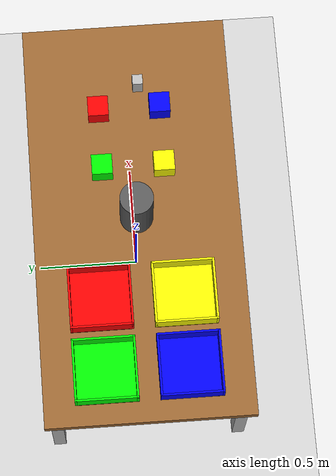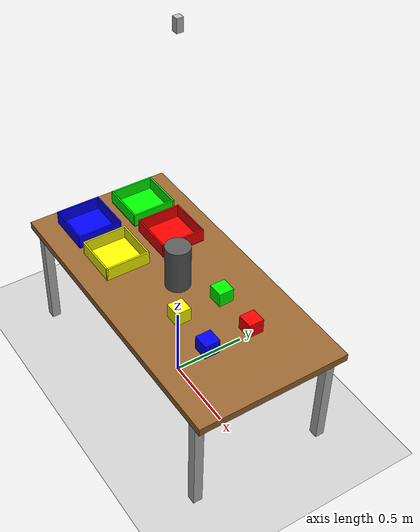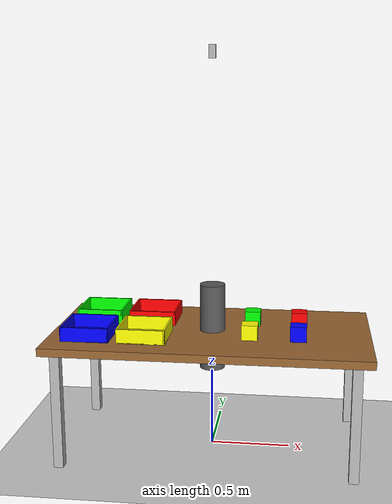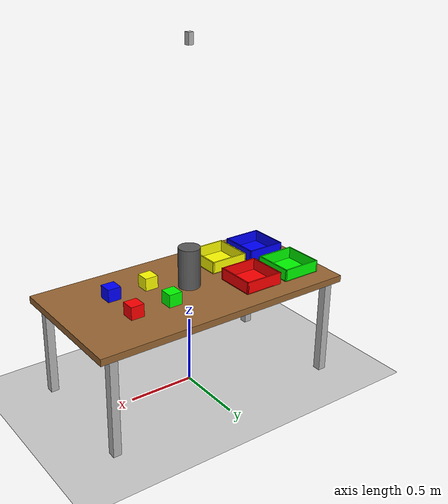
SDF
<?xml version="1.0" ?>
<sdf version="1.9">
  <world name="pick_place_world">
    <!-- Physics -->
    <physics name="1ms" type="ignored">
      <max_step_size>0.001</max_step_size>
      <real_time_factor>1.0</real_time_factor>
    </physics>

    <!-- Plugins -->
    <plugin
      filename="gz-sim-physics-system"
      name="gz::sim::systems::Physics"/>

    <plugin
      filename="gz-sim-user-commands-system"
      name="gz::sim::systems::UserCommands"/>

    <plugin
      filename="gz-sim-scene-broadcaster-system"
      name="gz::sim::systems::SceneBroadcaster"/>

    <plugin
      filename="gz-sim-sensors-system"
      name="gz::sim::systems::Sensors">
      <render_engine>ogre2</render_engine>
    </plugin>

    <!-- Light -->
    <light type="directional" name="sun">
      <cast_shadows>true</cast_shadows>
      <pose>0 0 10 0 0 0</pose>
      <diffuse>1 1 1 1</diffuse>
      <specular>0.2 0.2 0.2 1</specular>
      <direction>-0.5 0.2 -1</direction>
    </light>

    <!-- Ground -->
    <model name="ground_plane">
      <static>true</static>
      <link name="link">
        <collision name="collision">
          <geometry>
            <plane>
              <normal>0 0 1</normal>
              <size>10 10</size>
            </plane>
          </geometry>
        </collision>

        <visual name="visual">
          <geometry>
            <plane>
              <normal>0 0 1</normal>
              <size>10 10</size>
            </plane>
          </geometry>
        </visual>
      </link>
    </model>

    <!-- TABLE -->
    <model name="simple_table">
      <static>true</static>
      <!-- Tischplatte -->
      <link name="table_top">
        <pose>0 0 0.75 0 0 0</pose>

        <collision name="collision">
          <geometry>
            <box>
              <size>2.0 1.0 0.05</size>
            </box>
          </geometry>
        </collision>

        <visual name="visual">
          <geometry>
            <box>
              <size>2.0 1.0 0.05</size>
            </box>
          </geometry>

          <material>
            <ambient>0.6 0.4 0.2 1</ambient>
            <diffuse>0.6 0.4 0.2 1</diffuse>
          </material>
        </visual>
      </link>

      <!-- Tischbein 1 -->
      <link name="leg1">
        <pose>0.9 0.45 0.375 0 0 0</pose>

        <collision name="collision">
          <geometry>
            <box>
              <size>0.06 0.06 0.75</size>
            </box>
          </geometry>
        </collision>

        <visual name="visual">
          <geometry>
            <box>
              <size>0.06 0.06 0.75</size>
            </box>
          </geometry>
        </visual>
      </link>

      <!-- Tischbein 2 -->
      <link name="leg2">
        <pose>-0.9 0.45 0.375 0 0 0</pose>

        <collision name="collision">
          <geometry>
            <box>
              <size>0.06 0.06 0.75</size>
            </box>
          </geometry>
        </collision>

        <visual name="visual">
          <geometry>
            <box>
              <size>0.06 0.06 0.75</size>
            </box>
          </geometry>
        </visual>
      </link>

      <!-- Tischbein 3 -->
      <link name="leg3">
        <pose>0.9 -0.45 0.375 0 0 0</pose>

        <collision name="collision">
          <geometry>
            <box>
              <size>0.06 0.06 0.75</size>
            </box>
          </geometry>
        </collision>

        <visual name="visual">
          <geometry>
            <box>
              <size>0.06 0.06 0.75</size>
            </box>
          </geometry>
        </visual>
      </link>

      <!-- Tischbein 4 -->
      <link name="leg4">
        <pose>-0.9 -0.45 0.375 0 0 0</pose>

        <collision name="collision">
          <geometry>
            <box>
              <size>0.06 0.06 0.75</size>
            </box>
          </geometry>
        </collision>

        <visual name="visual">
          <geometry>
            <box>
              <size>0.06 0.06 0.75</size>
            </box>
          </geometry>
        </visual>
      </link>
    </model>

    <!-- BOXES -->
    <model name="obj_red">
      <static>true</static>
      <pose>0.55 0.15 0.82 0 0 0</pose>

      <link name="link">
        <visual name="visual">
          <geometry>
            <box>
              <size>0.1 0.1 0.1</size>
            </box>
          </geometry>

          <material>
            <ambient>1 0 0 1</ambient>
            <diffuse>1 0 0 1</diffuse>
          </material>
        </visual>
      </link>
    </model>

    <model name="obj_green">
      <static>true</static>
      <pose>0.25 0.15 0.82 0 0 0</pose>

      <link name="link">
        <visual name="visual">
          <geometry>
            <box>
              <size>0.1 0.1 0.1</size>
            </box>
          </geometry>

          <material>
            <ambient>0 1 0 1</ambient>
            <diffuse>0 1 0 1</diffuse>
          </material>
        </visual>
      </link>
    </model>

    <model name="obj_blue">
      <static>true</static>
      <pose>0.55 -0.15 0.82 0 0 0</pose>

      <link name="link">
        <visual name="visual">
          <geometry>
            <box>
              <size>0.1 0.1 0.1</size>
            </box>
          </geometry>

          <material>
            <ambient>0 0 1 1</ambient>
            <diffuse>0 0 1 1</diffuse>
          </material>
        </visual>
      </link>
    </model>

    <model name="obj_yellow">
      <static>true</static>
      <pose>0.25 -0.15 0.82 0 0 0</pose>

      <link name="link">
        <visual name="visual">
          <geometry>
            <box>
              <size>0.1 0.1 0.1</size>
            </box>
          </geometry>

          <material>
            <ambient>1 1 0 1</ambient>
            <diffuse>1 1 0 1</diffuse>
          </material>
        </visual>
      </link>
    </model>

     <!-- green bin -->
    <model name="green_bin">
      <static>true</static>
      <!-- Set the position of the bin as a whole -->
      <pose>-0.75 0.20 0.765 0 0 0</pose> <!-- x, y, z of table top + bin bottom/2 -->

      <link name="link">
        <!-- Bottom -->
        <collision name="bottom_collision">
          <pose>0 0 0 0 0 0</pose> <!-- relative to link -->
          <geometry>
            <box><size>0.30 0.30 0.03</size></box>
          </geometry>
        </collision>
        <visual name="bottom_visual">
          <pose>0 0 0 0 0 0</pose>
          <geometry>
            <box><size>0.30 0.30 0.03</size></box>
          </geometry>
          <material>
            <ambient>0 1 0 1</ambient>
            <diffuse>0 1 0 1</diffuse>
          </material>
        </visual>

        <!-- Front wall -->
        <collision name="front_wall_collision">
          <pose>0 0.145 0.05 0 0 0</pose> <!-- offset from link origin -->
          <geometry>
            <box><size>0.30 0.01 0.10</size></box>
          </geometry>
        </collision>
        <visual name="front_wall_visual">
          <pose>0 0.145 0.05 0 0 0</pose>
          <geometry>
            <box><size>0.30 0.01 0.10</size></box>
          </geometry>
          <material>
            <ambient>0 1 0 1</ambient>
            <diffuse>0 1 0 1</diffuse>
          </material>
        </visual>

        <!-- Back wall -->
        <collision name="back_wall_collision">
          <pose>0 -0.145 0.05 0 0 0</pose>
          <geometry>
            <box><size>0.30 0.01 0.10</size></box>
          </geometry>
        </collision>
        <visual name="back_wall_visual">
          <pose>0 -0.145 0.05 0 0 0</pose>
          <geometry>
            <box><size>0.30 0.01 0.10</size></box>
          </geometry>
          <material>
            <ambient>0 1 0 1</ambient>
            <diffuse>0 1 0 1</diffuse>
          </material>
        </visual>

        <!-- Left wall -->
        <collision name="left_wall_collision">
          <pose>-0.145 0 0.05 0 0 0</pose>
          <geometry>
            <box><size>0.01 0.30 0.10</size></box>
          </geometry>
        </collision>
        <visual name="left_wall_visual">
          <pose>-0.145 0 0.05 0 0 0</pose>
          <geometry>
            <box><size>0.01 0.30 0.10</size></box>
          </geometry>
          <material>
            <ambient>0 1 0 1</ambient>
            <diffuse>0 1 0 1</diffuse>
          </material>
        </visual>

        <!-- Right wall -->
        <collision name="right_wall_collision">
          <pose>0.145 0 0.05 0 0 0</pose>
          <geometry>
            <box><size>0.01 0.30 0.10</size></box>
          </geometry>
        </collision>
        <visual name="right_wall_visual">
          <pose>0.145 0 0.05 0 0 0</pose>
          <geometry>
            <box><size>0.01 0.30 0.10</size></box>
          </geometry>
          <material>
            <ambient>0 1 0 1</ambient>
            <diffuse>0 1 0 1</diffuse>
          </material>
        </visual>

      </link>
    </model>

    <!-- red bin -->
    <model name="red_bin">
      <static>true</static>
      <!-- Position the bin as a whole -->
      <pose>-0.4 0.20 0.765 0 0 0</pose> <!-- x, y, z of table top + bin bottom/2 -->

      <link name="link">
        <!-- Bottom -->
        <collision name="bottom_collision">
          <pose>0 0 0 0 0 0</pose>
          <geometry>
            <box><size>0.30 0.30 0.03</size></box>
          </geometry>
        </collision>
        <visual name="bottom_visual">
          <pose>0 0 0 0 0 0</pose>
          <geometry>
            <box><size>0.30 0.30 0.03</size></box>
          </geometry>
          <material>
            <ambient>1 0 0 1</ambient>
            <diffuse>1 0 0 1</diffuse>
          </material>
        </visual>

        <!-- Front wall -->
        <collision name="front_wall_collision">
          <pose>0 0.145 0.05 0 0 0</pose>
          <geometry>
            <box><size>0.30 0.01 0.10</size></box>
          </geometry>
        </collision>
        <visual name="front_wall_visual">
          <pose>0 0.145 0.05 0 0 0</pose>
          <geometry>
            <box><size>0.30 0.01 0.10</size></box>
          </geometry>
          <material>
            <ambient>1 0 0 1</ambient>
            <diffuse>1 0 0 1</diffuse>
          </material>
        </visual>

        <!-- Back wall -->
        <collision name="back_wall_collision">
          <pose>0 -0.145 0.05 0 0 0</pose>
          <geometry>
            <box><size>0.30 0.01 0.10</size></box>
          </geometry>
        </collision>
        <visual name="back_wall_visual">
          <pose>0 -0.145 0.05 0 0 0</pose>
          <geometry>
            <box><size>0.30 0.01 0.10</size></box>
          </geometry>
          <material>
            <ambient>1 0 0 1</ambient>
            <diffuse>1 0 0 1</diffuse>
          </material>
        </visual>

        <!-- Left wall -->
        <collision name="left_wall_collision">
          <pose>-0.145 0 0.05 0 0 0</pose>
          <geometry>
            <box><size>0.01 0.30 0.10</size></box>
          </geometry>
        </collision>
        <visual name="left_wall_visual">
          <pose>-0.145 0 0.05 0 0 0</pose>
          <geometry>
            <box><size>0.01 0.30 0.10</size></box>
          </geometry>
          <material>
            <ambient>1 0 0 1</ambient>
            <diffuse>1 0 0 1</diffuse>
          </material>
        </visual>

        <!-- Right wall -->
        <collision name="right_wall_collision">
          <pose>0.145 0 0.05 0 0 0</pose>
          <geometry>
            <box><size>0.01 0.30 0.10</size></box>
          </geometry>
        </collision>
        <visual name="right_wall_visual">
          <pose>0.145 0 0.05 0 0 0</pose>
          <geometry>
            <box><size>0.01 0.30 0.10</size></box>
          </geometry>
          <material>
            <ambient>1 0 0 1</ambient>
            <diffuse>1 0 0 1</diffuse>
          </material>
        </visual>

      </link>
    </model>

    <!-- blue bin -->
    <model name="blue_bin">
      <static>true</static>
      <!-- Position the bin as a whole -->
      <pose>-0.75 -0.20 0.765 0 0 0</pose> <!-- x, y, z of table top + bin bottom/2 -->

      <link name="link">
        <!-- Bottom -->
        <collision name="bottom_collision">
          <pose>0 0 0 0 0 0</pose>
          <geometry>
            <box><size>0.30 0.30 0.03</size></box>
          </geometry>
        </collision>
        <visual name="bottom_visual">
          <pose>0 0 0 0 0 0</pose>
          <geometry>
            <box><size>0.30 0.30 0.03</size></box>
          </geometry>
          <material>
            <ambient>0 0 1 1</ambient>
            <diffuse>0 0 1 1</diffuse>
          </material>
        </visual>

        <!-- Front wall -->
        <collision name="front_wall_collision">
          <pose>0 0.145 0.05 0 0 0</pose>
          <geometry>
            <box><size>0.30 0.01 0.10</size></box>
          </geometry>
        </collision>
        <visual name="front_wall_visual">
          <pose>0 0.145 0.05 0 0 0</pose>
          <geometry>
            <box><size>0.30 0.01 0.10</size></box>
          </geometry>
          <material>
            <ambient>0 0 1 1</ambient>
            <diffuse>0 0 1 1</diffuse>
          </material>
        </visual>

        <!-- Back wall -->
        <collision name="back_wall_collision">
          <pose>0 -0.145 0.05 0 0 0</pose>
          <geometry>
            <box><size>0.30 0.01 0.10</size></box>
          </geometry>
        </collision>
        <visual name="back_wall_visual">
          <pose>0 -0.145 0.05 0 0 0</pose>
          <geometry>
            <box><size>0.30 0.01 0.10</size></box>
          </geometry>
          <material>
            <ambient>0 0 1 1</ambient>
            <diffuse>0 0 1 1</diffuse>
          </material>
        </visual>

        <!-- Left wall -->
        <collision name="left_wall_collision">
          <pose>-0.145 0 0.05 0 0 0</pose>
          <geometry>
            <box><size>0.01 0.30 0.10</size></box>
          </geometry>
        </collision>
        <visual name="left_wall_visual">
          <pose>-0.145 0 0.05 0 0 0</pose>
          <geometry>
            <box><size>0.01 0.30 0.10</size></box>
          </geometry>
          <material>
            <ambient>0 0 1 1</ambient>
            <diffuse>0 0 1 1</diffuse>
          </material>
        </visual>

        <!-- Right wall -->
        <collision name="right_wall_collision">
          <pose>0.145 0 0.05 0 0 0</pose>
          <geometry>
            <box><size>0.01 0.30 0.10</size></box>
          </geometry>
        </collision>
        <visual name="right_wall_visual">
          <pose>0.145 0 0.05 0 0 0</pose>
          <geometry>
            <box><size>0.01 0.30 0.10</size></box>
          </geometry>
          <material>
            <ambient>0 0 1 1</ambient>
            <diffuse>0 0 1 1</diffuse>
          </material>
        </visual>
      </link>
    </model>

    <!-- yellow bin -->
    <model name="yellow_bin">
      <static>true</static>
      <!-- Position the bin as a whole -->
      <pose>-0.4 -0.20 0.765 0 0 0</pose> <!-- x, y, z of table top + bin bottom/2 -->

      <link name="link">
        <!-- Bottom -->
        <collision name="bottom_collision">
          <pose>0 0 0 0 0 0</pose>
          <geometry>
            <box><size>0.30 0.30 0.03</size></box>
          </geometry>
        </collision>
        <visual name="bottom_visual">
          <pose>0 0 0 0 0 0</pose>
          <geometry>
            <box><size>0.30 0.30 0.03</size></box>
          </geometry>
          <material>
            <ambient>1 1 0 1</ambient>
            <diffuse>1 1 0 1</diffuse>
          </material>
        </visual>

        <!-- Front wall -->
        <collision name="front_wall_collision">
          <pose>0 0.145 0.05 0 0 0</pose>
          <geometry>
            <box><size>0.30 0.01 0.10</size></box>
          </geometry>
        </collision>
        <visual name="front_wall_visual">
          <pose>0 0.145 0.05 0 0 0</pose>
          <geometry>
            <box><size>0.30 0.01 0.10</size></box>
          </geometry>
          <material>
            <ambient>1 1 0 1</ambient>
            <diffuse>1 1 0 1</diffuse>
          </material>
        </visual>

        <!-- Back wall -->
        <collision name="back_wall_collision">
          <pose>0 -0.145 0.05 0 0 0</pose>
          <geometry>
            <box><size>0.30 0.01 0.10</size></box>
          </geometry>
        </collision>
        <visual name="back_wall_visual">
          <pose>0 -0.145 0.05 0 0 0</pose>
          <geometry>
            <box><size>0.30 0.01 0.10</size></box>
          </geometry>
          <material>
            <ambient>1 1 0 1</ambient>
            <diffuse>1 1 0 1</diffuse>
          </material>
        </visual>

        <!-- Left wall -->
        <collision name="left_wall_collision">
          <pose>-0.145 0 0.05 0 0 0</pose>
          <geometry>
            <box><size>0.01 0.30 0.10</size></box>
          </geometry>
        </collision>
        <visual name="left_wall_visual">
          <pose>-0.145 0 0.05 0 0 0</pose>
          <geometry>
            <box><size>0.01 0.30 0.10</size></box>
          </geometry>
          <material>
            <ambient>1 1 0 1</ambient>
            <diffuse>1 1 0 1</diffuse>
          </material>
        </visual>

        <!-- Right wall -->
        <collision name="right_wall_collision">
          <pose>0.145 0 0.05 0 0 0</pose>
          <geometry>
            <box><size>0.01 0.30 0.10</size></box>
          </geometry>
        </collision>
        <visual name="right_wall_visual">
          <pose>0.145 0 0.05 0 0 0</pose>
          <geometry>
            <box><size>0.01 0.30 0.10</size></box>
          </geometry>
          <material>
            <ambient>1 1 0 1</ambient>
            <diffuse>1 1 0 1</diffuse>
          </material>
        </visual>
      </link>
    </model>

    <!-- CAMERA  -->
    <include>
      <uri>model://gripper_depth_camera</uri>
      <pose>0 0 2.5 0 1.57 0</pose>
    </include>

    <!-- Roboter-Podest  -->
    <model name="robot_pedestal">
      <static>true</static>
      <pose>0 0 0.80 0 0 0</pose>
      <link name="pedestal_link">
        <visual name="pedestal_visual">
          <geometry>
            <cylinder>
              <radius>0.08</radius>
              <length>0.55</length>
            </cylinder>
          </geometry>
          <material>
            <ambient>0.25 0.25 0.25 1</ambient>
            <diffuse>0.35 0.35 0.35 1</diffuse>
            <specular>0.1 0.1 0.1 1</specular>
          </material>
        </visual>

      </link>
    </model>

  </world>
</sdf>

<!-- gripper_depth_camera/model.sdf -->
<sdf version="1.9">
  <model name="gripper_depth_camera">
    <static>true</static>
    <pose>0 0 3 0 1.5708 1.5708</pose>

    <link name="camera_link">
      <pose>0 0 0 0 0 0</pose>

      <visual name="camera_visual">
        <geometry>
          <box>
            <size>0.08 0.04 0.04</size>
          </box>
        </geometry>
      </visual>

      <sensor name="depth_camera" type="camera">
        <always_on>true</always_on>
        <update_rate>30</update_rate>
        <topic>/gripper_camera/image</topic>

        <camera>
          <horizontal_fov>1.047</horizontal_fov>
          <image>
            <width>640</width>
            <height>480</height>
            <format>R8G8B8</format>
          </image>
          <clip>
            <near>0.05</near>
            <far>5.0</far>
          </clip>
        </camera>
      </sensor>
    </link>
  </model>
</sdf>
